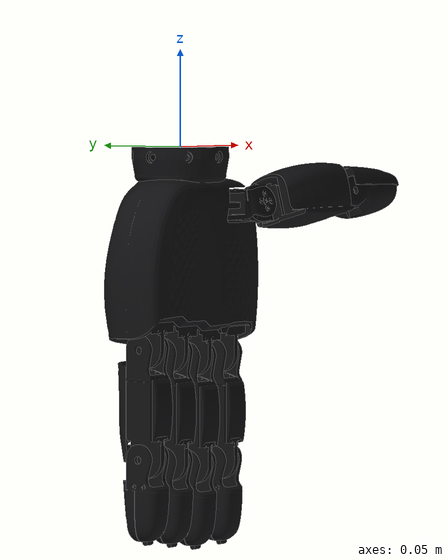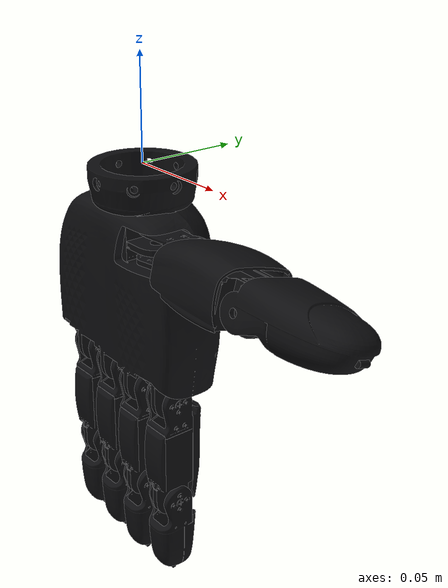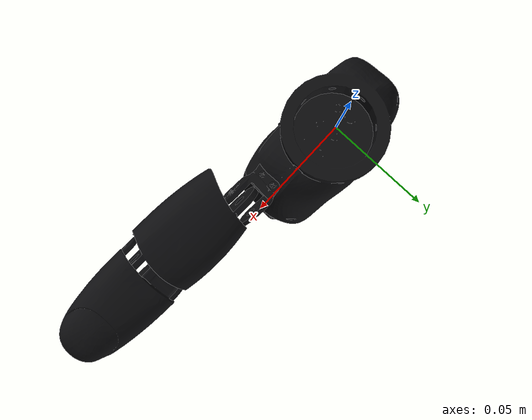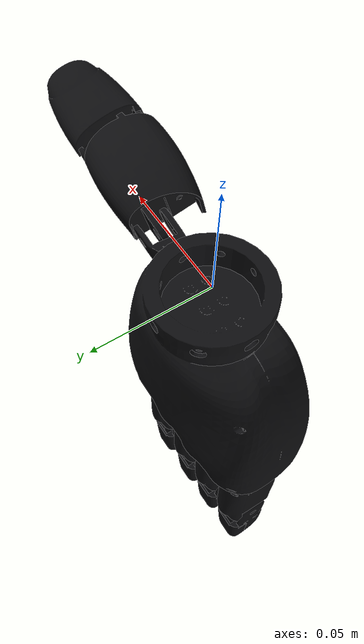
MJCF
<mujoco model="xhand_left">
  <compiler angle="radian" meshdir="./meshes/"/>

  <asset>
    <mesh name="left_hand_link" content_type="model/stl" file="left_hand_link.STL"/>
    <mesh name="left_hand_ee_link" content_type="model/stl" file="left_hand_ee_link.STL"/>
    <mesh name="left_hand_thumb_bend_link" content_type="model/stl" file="left_hand_thumb_bend_link.STL"/>
    <mesh name="left_hand_thumb_rota_link1" content_type="model/stl" file="left_hand_thumb_rota_link1.STL"/>
    <mesh name="left_hand_thumb_rota_link2" content_type="model/stl" file="left_hand_thumb_rota_link2.STL"/>
    <mesh name="left_hand_thumb_rota_tip" content_type="model/stl" file="left_hand_thumb_rota_tip.STL"/>
    <mesh name="left_hand_index_bend_link" content_type="model/stl" file="left_hand_index_bend_link.STL"/>
    <mesh name="left_hand_index_rota_link1" content_type="model/stl" file="left_hand_index_rota_link1.STL"/>
    <mesh name="left_hand_index_rota_link2" content_type="model/stl" file="left_hand_index_rota_link2.STL"/>
    <mesh name="left_hand_index_rota_tip" content_type="model/stl" file="left_hand_index_rota_tip.STL"/>
    <mesh name="left_hand_mid_link1" content_type="model/stl" file="left_hand_mid_link1.STL"/>
    <mesh name="left_hand_mid_link2" content_type="model/stl" file="left_hand_mid_link2.STL"/>
    <mesh name="left_hand_mid_tip" content_type="model/stl" file="left_hand_mid_tip.STL"/>
    <mesh name="left_hand_ring_link1" content_type="model/stl" file="left_hand_ring_link1.STL"/>
    <mesh name="left_hand_ring_link2" content_type="model/stl" file="left_hand_ring_link2.STL"/>
    <mesh name="left_hand_ring_tip" content_type="model/stl" file="left_hand_ring_tip.STL"/>
    <mesh name="left_hand_pinky_link1" content_type="model/stl" file="left_hand_pinky_link1.STL"/>
    <mesh name="left_hand_pinky_link2" content_type="model/stl" file="left_hand_pinky_link2.STL"/>
    <mesh name="left_hand_pinky_tip" content_type="model/stl" file="left_hand_pinky_tip.STL"/>
  </asset>

  <worldbody>
    <geom type="mesh" contype="0" conaffinity="0" group="1" density="0" rgba="0.0549 0.0549 0.0627 1" mesh="left_hand_link"/>
    <geom type="mesh" rgba="0.0549 0.0549 0.0627 1" mesh="left_hand_link"/>
    <geom pos="0 0 -0.065" type="mesh" contype="0" conaffinity="0" group="1" density="0" rgba="0.0549 0.0549 0.0627 1" mesh="left_hand_ee_link"/>
    <geom pos="0 0 -0.065" type="mesh" rgba="0.0549 0.0549 0.0627 1" mesh="left_hand_ee_link"/>
    <body name="left_hand_thumb_bend_link" pos="0.0228 -0.0095 -0.0305">
      <inertial pos="0.0145291 0.000901344 -0.000127912" quat="-0.028902 0.68936 -0.0167067 0.72365" mass="0.00985534" diaginertia="1.30648e-06 1.29142e-06 5.40957e-07"/>
      <joint name="left_hand_thumb_bend_joint" pos="0 0 0" axis="0 0 -1" range="0 1.83" actuatorfrcrange="-1.1 1.1" damping="1" frictionloss="1"/>
      <geom type="mesh" contype="0" conaffinity="0" group="1" density="0" rgba="0.0549 0.0549 0.0627 1" mesh="left_hand_thumb_bend_link"/>
      <geom type="mesh" rgba="0.0549 0.0549 0.0627 1" mesh="left_hand_thumb_bend_link"/>
      <body name="left_hand_thumb_rota_link1" pos="0.028599 -0.0083177 0.00178" quat="0.99124 -0.130499 0.00265603 -0.0201745">
        <inertial pos="0.0279279 0.000121046 -0.000277543" quat="0.0994744 0.703642 -0.0845458 0.698459" mass="0.153197" diaginertia="5.62164e-05 4.89587e-05 2.23807e-05"/>
        <joint name="left_hand_thumb_rota_joint1" pos="0 0 0" axis="0 1 0" range="-1.05 1.57" actuatorfrcrange="-1.1 1.1" damping="1" frictionloss="1"/>
        <geom type="mesh" contype="0" conaffinity="0" group="1" density="0" rgba="0.0549 0.0549 0.0627 1" mesh="left_hand_thumb_rota_link1"/>
        <geom type="mesh" rgba="0.0549 0.0549 0.0627 1" mesh="left_hand_thumb_rota_link1"/>
        <body name="left_hand_thumb_rota_link2" pos="0.0553 0 0">
          <inertial pos="0.022453 0.000690615 0.00314279" quat="0.0604384 0.713745 -0.0199601 0.697508" mass="0.037401" diaginertia="9.54694e-06 8.27053e-06 3.92141e-06"/>
          <joint name="left_hand_thumb_rota_joint2" pos="0 0 0" axis="0 1 0" range="-0.17 1.83" actuatorfrcrange="-0.4 0.4" damping="1" frictionloss="1"/>
          <geom type="mesh" contype="0" conaffinity="0" group="1" density="0" rgba="0.0549 0.0549 0.0627 1" mesh="left_hand_thumb_rota_link2"/>
          <geom type="mesh" rgba="0.0549 0.0549 0.0627 1" mesh="left_hand_thumb_rota_link2"/>
          <geom pos="0.0504017 0 0" type="mesh" contype="0" conaffinity="0" group="1" density="0" rgba="0.0549 0.0549 0.0627 1" mesh="left_hand_thumb_rota_tip"/>
          <geom pos="0.0504017 0 0" type="mesh" rgba="0.0549 0.0549 0.0627 1" mesh="left_hand_thumb_rota_tip"/>
        </body>
      </body>
    </body>
    <body name="left_hand_index_bend_link" pos="0.0265 -0.0065 -0.0899">
      <inertial pos="-0.000134545 -0.000675884 0.00420851" quat="0.999797 0.0190041 0.00232573 0.00634399" mass="0.0677836" diaginertia="2.16573e-05 2.09935e-05 3.36931e-06"/>
      <joint name="left_hand_index_bend_joint" pos="0 0 0" axis="0 1 0" range="-0.175 0.175" actuatorfrcrange="-0.4 0.4" damping="1" frictionloss="1"/>
      <geom type="mesh" contype="0" conaffinity="0" group="1" density="0" rgba="0.0549 0.0549 0.0627 1" mesh="left_hand_index_bend_link"/>
      <geom type="mesh" rgba="0.0549 0.0549 0.0627 1" mesh="left_hand_index_bend_link"/>
      <body name="left_hand_index_rota_link1" pos="0 0 -0.0178">
        <inertial pos="0.000139769 0.000800517 -0.0356039" quat="0.999865 -0.00809181 0.0131314 0.00566203" mass="0.0630216" diaginertia="2.05301e-05 1.92461e-05 4.135e-06"/>
        <joint name="left_hand_index_joint1" pos="0 0 0" axis="-1 0 0" range="0 1.92" actuatorfrcrange="-1.1 1.1" damping="1" frictionloss="1"/>
        <geom type="mesh" contype="0" conaffinity="0" group="1" density="0" rgba="0.0549 0.0549 0.0627 1" mesh="left_hand_index_rota_link1"/>
        <geom type="mesh" rgba="0.0549 0.0549 0.0627 1" mesh="left_hand_index_rota_link1"/>
        <body name="left_hand_index_rota_link2" pos="0 0 -0.0558">
          <inertial pos="0.000338569 -1.93676e-05 -0.0231329" quat="0.935383 -0.00588963 0.0260882 0.352623" mass="0.0179923" diaginertia="3.02411e-06 3.01969e-06 9.82703e-07"/>
          <joint name="left_hand_index_joint2" pos="0 0 0" axis="-1 0 0" range="0 1.92" actuatorfrcrange="-0.4 0.4" damping="1" frictionloss="1"/>
          <geom type="mesh" contype="0" conaffinity="0" group="1" density="0" rgba="0.0549 0.0549 0.0627 1" mesh="left_hand_index_rota_link2"/>
          <geom type="mesh" rgba="0.0549 0.0549 0.0627 1" mesh="left_hand_index_rota_link2"/>
          <geom pos="0 0 -0.0425" type="mesh" contype="0" conaffinity="0" group="1" density="0" rgba="0.0549 0.0549 0.0627 1" mesh="left_hand_index_rota_tip"/>
          <geom pos="0 0 -0.0425" type="mesh" rgba="0.0549 0.0549 0.0627 1" mesh="left_hand_index_rota_tip"/>
        </body>
      </body>
    </body>
    <body name="left_hand_mid_link1" pos="0.004 -0.0065 -0.1082">
      <inertial pos="0.00013977 0.000800517 -0.0356039" quat="0.999865 -0.00809181 0.0131314 0.00566198" mass="0.0630216" diaginertia="2.05301e-05 1.92461e-05 4.135e-06"/>
      <joint name="left_hand_mid_joint1" pos="0 0 0" axis="-1 0 0" range="0 1.92" actuatorfrcrange="-1.1 1.1" damping="1" frictionloss="1"/>
      <geom type="mesh" contype="0" conaffinity="0" group="1" density="0" rgba="0.0549 0.0549 0.0627 1" mesh="left_hand_mid_link1"/>
      <geom type="mesh" rgba="0.0549 0.0549 0.0627 1" mesh="left_hand_mid_link1"/>
      <body name="left_hand_mid_link2" pos="0 0 -0.0558">
        <inertial pos="0.000338571 -1.93625e-05 -0.0231329" quat="0.935371 -0.00588853 0.0260882 0.352656" mass="0.0179923" diaginertia="3.02411e-06 3.01969e-06 9.82702e-07"/>
        <joint name="left_hand_mid_joint2" pos="0 0 0" axis="-1 0 0" range="0 1.92" actuatorfrcrange="-0.4 0.4" damping="1" frictionloss="1"/>
        <geom type="mesh" contype="0" conaffinity="0" group="1" density="0" rgba="0.0549 0.0549 0.0627 1" mesh="left_hand_mid_link2"/>
        <geom type="mesh" rgba="0.0549 0.0549 0.0627 1" mesh="left_hand_mid_link2"/>
        <geom pos="0 0 -0.0425" type="mesh" contype="0" conaffinity="0" group="1" density="0" rgba="0.0549 0.0549 0.0627 1" mesh="left_hand_mid_tip"/>
        <geom pos="0 0 -0.0425" type="mesh" rgba="0.0549 0.0549 0.0627 1" mesh="left_hand_mid_tip"/>
      </body>
    </body>
    <body name="left_hand_ring_link1" pos="-0.016 -0.0065 -0.1052">
      <inertial pos="0.00013977 0.000800517 -0.0356039" quat="0.999865 -0.00809184 0.0131314 0.00566198" mass="0.0630216" diaginertia="2.05301e-05 1.92461e-05 4.13501e-06"/>
      <joint name="left_hand_ring_joint1" pos="0 0 0" axis="-1 0 0" range="0 1.92" actuatorfrcrange="-1.1 1.1" damping="1" frictionloss="1"/>
      <geom type="mesh" contype="0" conaffinity="0" group="1" density="0" rgba="0.0549 0.0549 0.0627 1" mesh="left_hand_ring_link1"/>
      <geom type="mesh" rgba="0.0549 0.0549 0.0627 1" mesh="left_hand_ring_link1"/>
      <body name="left_hand_ring_link2" pos="0 0 -0.0558">
        <inertial pos="0.000338569 -1.93675e-05 -0.0231329" quat="0.935383 -0.00588963 0.0260882 0.352623" mass="0.0179923" diaginertia="3.02411e-06 3.01969e-06 9.82703e-07"/>
        <joint name="left_hand_ring_joint2" pos="0 0 0" axis="-1 0 0" range="0 1.92" actuatorfrcrange="-0.4 0.4" damping="1" frictionloss="1"/>
        <geom type="mesh" contype="0" conaffinity="0" group="1" density="0" rgba="0.0549 0.0549 0.0627 1" mesh="left_hand_ring_link2"/>
        <geom type="mesh" rgba="0.0549 0.0549 0.0627 1" mesh="left_hand_ring_link2"/>
        <geom pos="0 0 -0.0425" type="mesh" contype="0" conaffinity="0" group="1" density="0" rgba="0.0549 0.0549 0.0627 1" mesh="left_hand_ring_tip"/>
        <geom pos="0 0 -0.0425" type="mesh" rgba="0.0549 0.0549 0.0627 1" mesh="left_hand_ring_tip"/>
      </body>
    </body>
    <body name="left_hand_pinky_link1" pos="-0.036 -0.0065 -0.1022">
      <inertial pos="0.000139769 0.000800517 -0.0356039" quat="0.999865 -0.00809183 0.0131314 0.00566202" mass="0.0630216" diaginertia="2.05301e-05 1.92461e-05 4.135e-06"/>
      <joint name="left_hand_pinky_joint1" pos="0 0 0" axis="-1 0 0" range="0 1.92" actuatorfrcrange="-1.1 1.1" damping="1" frictionloss="1"/>
      <geom type="mesh" contype="0" conaffinity="0" group="1" density="0" rgba="0.0549 0.0549 0.0627 1" mesh="left_hand_pinky_link1"/>
      <geom type="mesh" rgba="0.0549 0.0549 0.0627 1" mesh="left_hand_pinky_link1"/>
      <body name="left_hand_pinky_link2" pos="0 0 -0.0558">
        <inertial pos="0.000338573 -1.93618e-05 -0.0231329" quat="0.935376 -0.00588888 0.026088 0.352643" mass="0.0179923" diaginertia="3.0241e-06 3.01969e-06 9.82702e-07"/>
        <joint name="left_hand_pinky_joint2" pos="0 0 0" axis="-1 0 0" range="0 1.92" actuatorfrcrange="-0.4 0.4" damping="1" frictionloss="1"/>
        <geom type="mesh" contype="0" conaffinity="0" group="1" density="0" rgba="0.0549 0.0549 0.0627 1" mesh="left_hand_pinky_link2"/>
        <geom type="mesh" rgba="0.0549 0.0549 0.0627 1" mesh="left_hand_pinky_link2"/>
        <geom pos="0 0 -0.0425" type="mesh" contype="0" conaffinity="0" group="1" density="0" rgba="0.0549 0.0549 0.0627 1" mesh="left_hand_pinky_tip"/>
        <geom pos="0 0 -0.0425" type="mesh" rgba="0.0549 0.0549 0.0627 1" mesh="left_hand_pinky_tip"/>
      </body>
    </body>
  </worldbody>
</mujoco>
